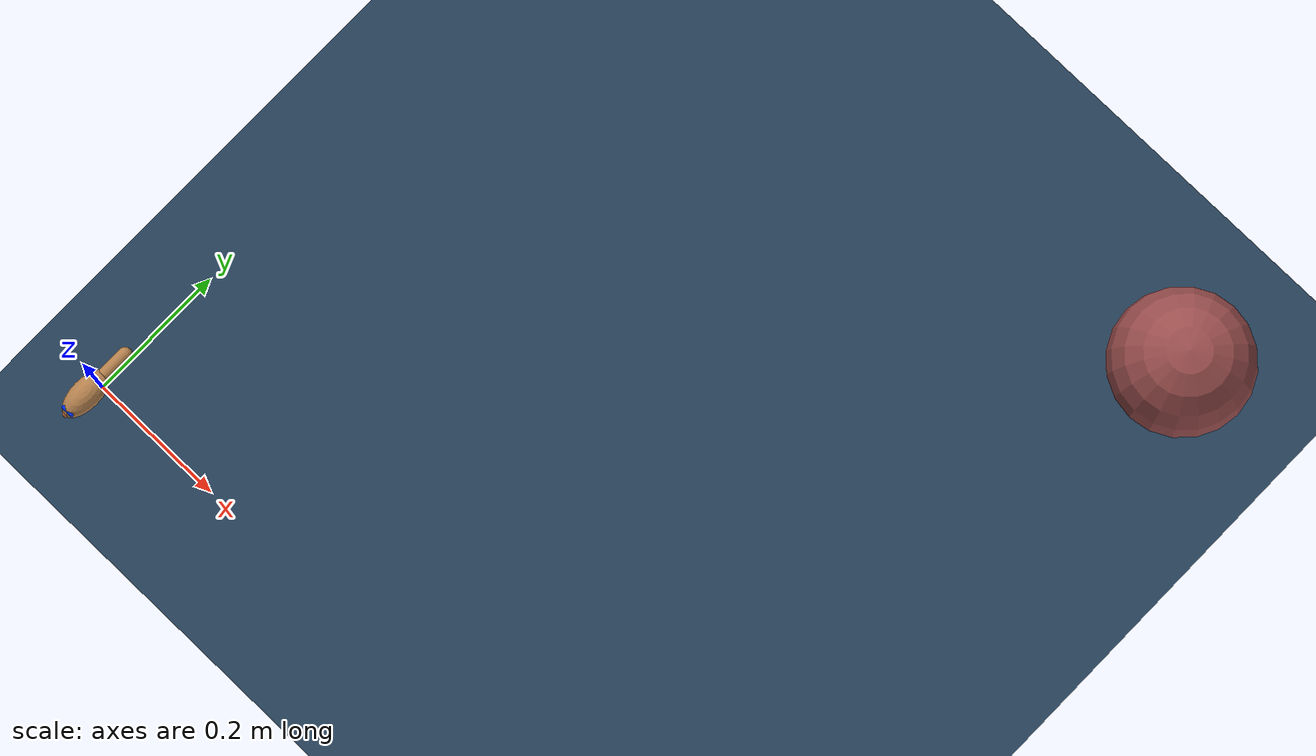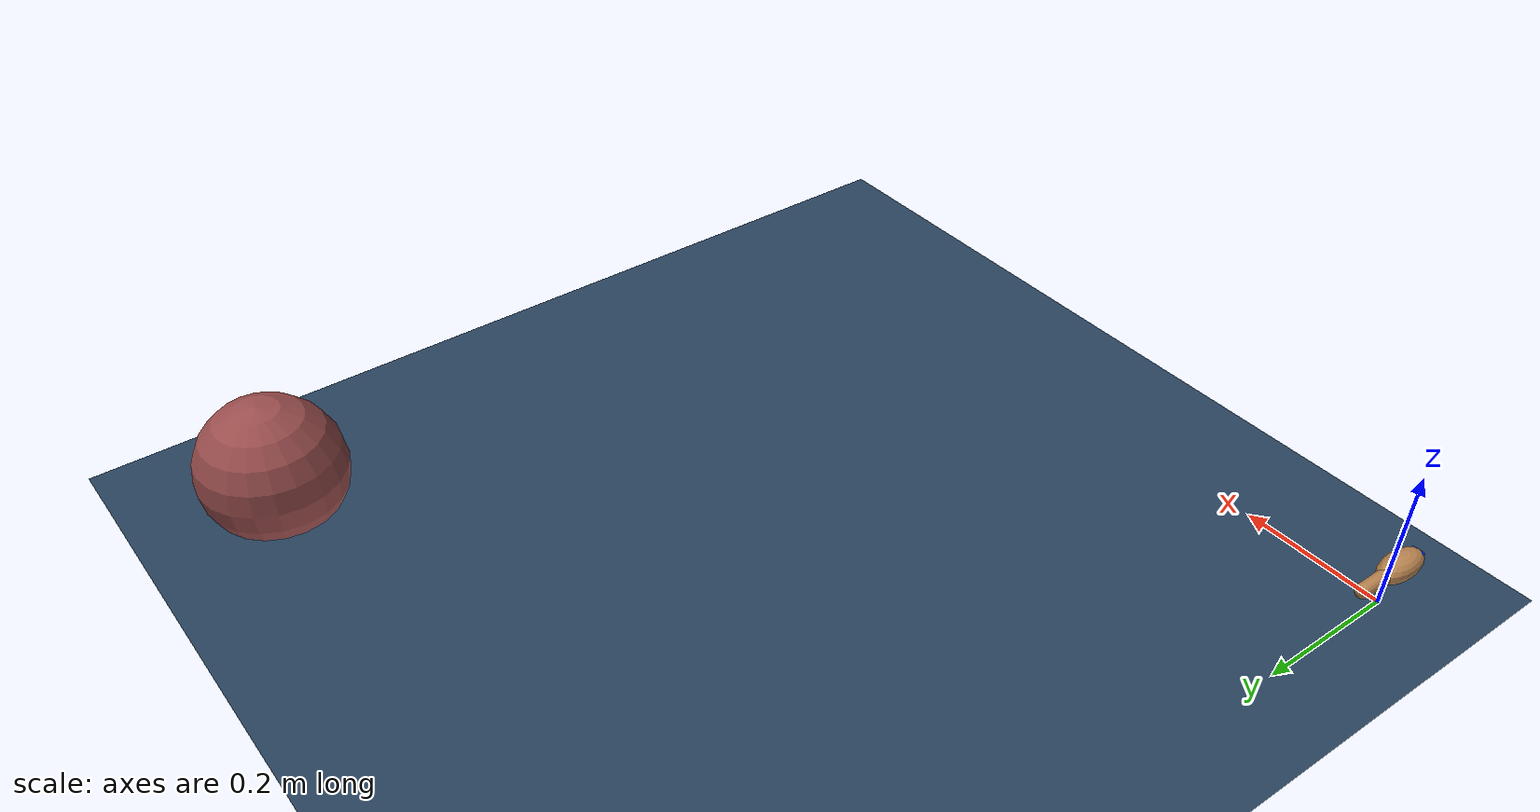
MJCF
<mujoco model="swimmer">
  <include file="./common/visual.xml"/>
  <include file="./common/skybox.xml"/>
  <include file="./common/materials.xml"/>

  <option timestep="0.002" density="3000">
    <flag contact="disable"/>
  </option>

  <default>
    <default class="swimmer">
      <joint type="hinge" pos="0 -.05 0" axis="0 0 1" limited="true" solreflimit=".05 1" solimplimit="0 .8 .1" armature="1e-6"/>
      <default class="inertial">
        <geom type="box" size=".001 .05 .01" rgba="0 0 0 0" mass=".01"/>
      </default>
      <default class="visual">
        <geom type="capsule" size=".01" fromto="0 -.05 0 0 .05 0" material="self" mass="0"/>
      </default>
      <site size=".01" rgba="0 0 0 0"/>
    </default>
    <default class="free">
      <joint limited="false" stiffness="0" armature="0"/>
    </default>
    <motor gear="5e-4" ctrllimited="true" ctrlrange="-1 1"/>
  </default>

  <worldbody>
    <geom name="ground" type="plane" size="2 2 0.1" material="grid"/>
    <body name="head" pos="0 0 .05" childclass="swimmer">
      <light name="light_1" diffuse=".8 .8 .8" pos="0 0 1.5"/>
      <geom name="head" type="ellipsoid" size=".02 .04 .017" pos="0 -.022 0"  material="self" mass="0"/>
      <geom name="nose" type="sphere" pos="0 -.06 0" size=".004" material="effector" mass="0"/>
      <geom name="eyes" type="capsule" fromto="-.006 -.054 .005 .006 -.054 .005" size=".004" material="eye" mass="0"/>
      <camera name="tracking1" pos="0 -.2 .5" xyaxes="1 0 0 0 1 1" mode="trackcom" fovy="60"/>
      <camera name="tracking2" pos="-.9 .5 .15" xyaxes="0 -1 0 .3 0 1" mode="trackcom" fovy="60"/>
      <camera name="eyes" pos="0 -.058 .005" xyaxes="-1 0 0 0 0 1"/>
      <joint name="rootx" class="free" type="slide" axis="1 0 0" pos="0 -.05 0"/>
      <joint name="rooty" class="free" type="slide" axis="0 1 0" pos="0 -.05 0"/>
      <joint name="rootz" class="free" type="hinge" axis="0 0 1" pos="0 -.05 0"/>
      <geom name="inertial" class="inertial"/>
      <geom name="visual" class="visual"/>
      <site name="head"/>
    </body>
    <geom name="target" type="sphere" pos="1 1 .05" size=".1" material="target"/>
    <light name="target_light" diffuse="1 1 1" pos="1 1 1.5"/>
  </worldbody>

  <sensor>
    <framepos name="nose_pos" objtype="geom" objname="nose"/>
    <framepos name="target_pos" objtype="geom" objname="target"/>
    <framexaxis name="head_xaxis" objtype="xbody" objname="head"/>
    <frameyaxis name="head_yaxis" objtype="xbody" objname="head"/>
    <velocimeter name="head_vel" site="head"/>
    <gyro name="head_gyro" site="head"/>
  </sensor>

</mujoco>

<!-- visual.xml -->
<mujoco>
  <visual>
    <headlight ambient=".4 .4 .4" diffuse=".8 .8 .8" specular="0.1 0.1 0.1"/>
    <map znear=".01"/>
    <quality shadowsize="2048"/>
  </visual>
</mujoco>

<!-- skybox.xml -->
<mujoco>
  <asset>
      <texture name="skybox" type="skybox" builtin="gradient" rgb1=".4 .6 .8" rgb2="0 0 0"
               width="800" height="800" mark="random" markrgb="1 1 1"/>
  </asset>
</mujoco>

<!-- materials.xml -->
<!--
Common textures, colors and materials to be used throughout this suite. Some
materials such as xxx_highlight are activated on occurence of certain events,
for example receiving a positive reward.
-->
<mujoco>
  <asset>
    <texture name="grid" type="2d" builtin="checker" rgb1=".1 .2 .3" rgb2=".2 .3 .4" width="300" height="300" mark="edge" markrgb=".2 .3 .4"/>
    <material name="grid" texture="grid" texrepeat="1 1" texuniform="true" reflectance=".2"/>
    <material name="self" rgba=".7 .5 .3 1"/>
    <material name="self_default" rgba=".7 .5 .3 1"/>
    <material name="self_highlight" rgba="0 .5 .3 1"/>
    <material name="effector" rgba=".7 .4 .2 1"/>
    <material name="effector_default" rgba=".7 .4 .2 1"/>
    <material name="effector_highlight" rgba="0 .5 .3 1"/>
    <material name="decoration" rgba=".3 .5 .7 1"/>
    <material name="eye" rgba="0 .2 1 1"/>
    <material name="target" rgba=".6 .3 .3 1"/>
    <material name="target_default" rgba=".6 .3 .3 1"/>
    <material name="target_highlight" rgba=".6 .3 .3 .4"/>
  </asset>
</mujoco>
